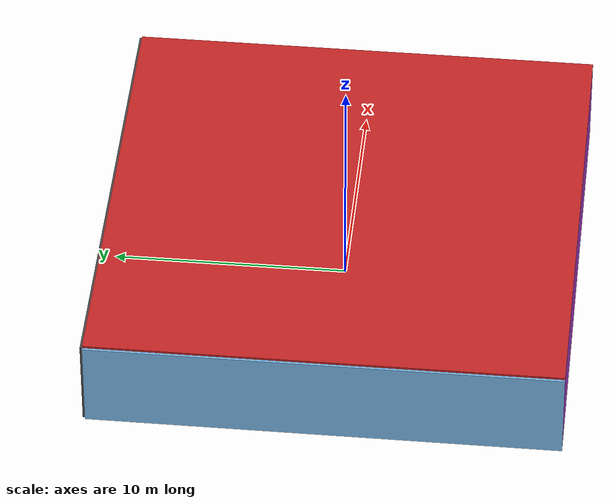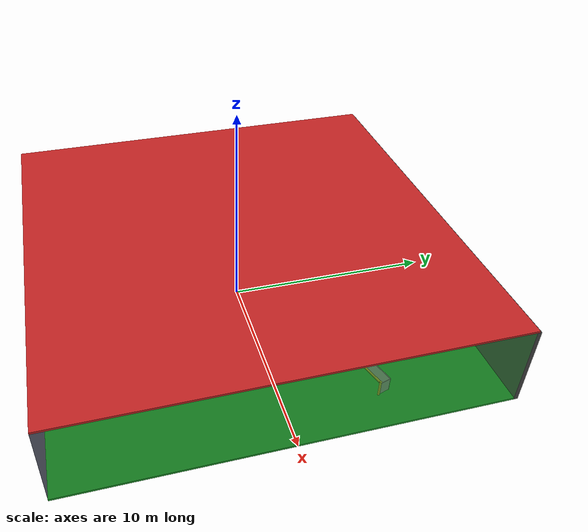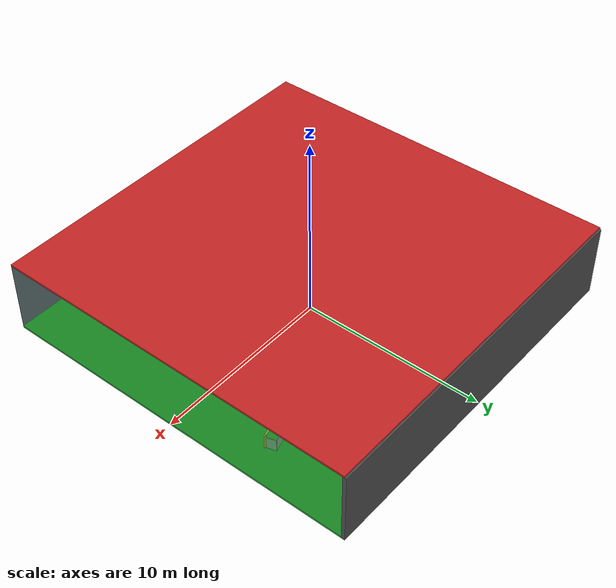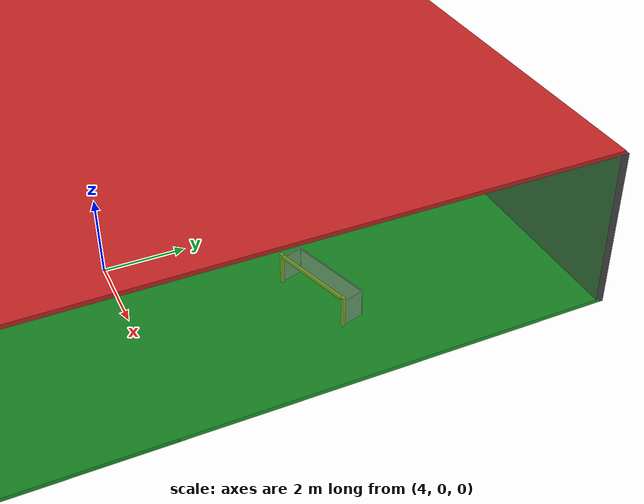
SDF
<sdf version="1.4">
 <world name="default">
  <physics type="ode">
   <max_step_size>0.001</max_step_size>
   <real_time_factor>1</real_time_factor>
   <real_time_update_rate>1000</real_time_update_rate>
   <gravity>0 0 -9.8</gravity>
  </physics>
  <scene><ambient>0.4 0.4 0.4 1</ambient><background>0.7 0.7 0.7 1</background><shadows>1</shadows></scene>
  <model name="Surrounding">
   <static>1</static>
   <link name="Ceiling">
    <collision name="Ceiling_Collision"><geometry><box><size>20 20 0.1</size></box></geometry></collision>
    <visual name="Ceiling_Visual">
     <geometry><box><size>20 20 0.1</size></box></geometry>
     <material>
      <script><uri>file://media/materials/scripts/gazebo.material</uri><name>Gazebo/RedBright</name></script>
     </material>
    </visual>
    <pose>0 0 4.05 0 0 0</pose>
   </link>
   <link name="Wall_South">
    <collision name="Wall_South_Collision">
     <geometry><box><size>20 0 4</size></box></geometry>
     <pose>0 0 2 0 -0 0</pose>
    </collision>
    <visual name="Wall_South_Visual">
     <pose>0 0 2 0 -0 0</pose>
     <geometry><box><size>20 0 4</size></box></geometry>
     <material>
      <script><uri>file://media/materials/scripts/gazebo.material</uri><name>Gazebo/Purple</name></script>
     </material>
    </visual>
    <velocity_decay><linear>0</linear><angular>0</angular></velocity_decay>
    <pose>0 -10 0 0 -0 0</pose>
   </link>
   <link name="Wall_East">
    <collision name="Wall_21_Collision">
     <geometry><box><size>20 0 4</size></box></geometry>
     <pose>0 0 2 0 -0 0</pose>
    </collision>
    <visual name="Wall_21_Visual">
     <pose>0 0 2 0 -0 0</pose>
     <geometry><box><size>20 0 4</size></box></geometry>
     <material>
      <script><uri>file://media/materials/scripts/gazebo.material</uri><name>Gazebo/GreenTransparent</name></script>
     </material>
    </visual>
    <velocity_decay><linear>0</linear><angular>0</angular></velocity_decay>
    <pose>10 0 0 0 -0 1.5708</pose>
   </link>
   <link name="Wall_North">
    <collision name="Wall_22_Collision">
     <geometry><box><size>20 0.2 4</size></box></geometry>
     <pose>0 0 2 0 -0 0</pose>
    </collision>
    <visual name="Wall_22_Visual">
     <pose>0 0 2 0 -0 0</pose>
     <geometry><box><size>20 0.2 4</size></box></geometry>
     <material>
      <script><uri>file://media/materials/scripts/gazebo.material</uri><name>Gazebo/DarkGrey</name></script>
     </material>
    </visual>
    <velocity_decay><linear>0</linear><angular>0</angular></velocity_decay>
    <pose>0 10 0 0 -0 0</pose>
   </link>
   <link name="Wall_West">
    <collision name="Wall_23_Collision">
     <geometry><box><size>20 0.2 4</size></box></geometry>
     <pose>0 0 2 0 -0 0</pose>
    </collision>
    <visual name="Wall_23_Visual">
     <pose>0 0 2 0 -0 0</pose>
     <geometry><box><size>20 0.2 4</size></box></geometry>
     <material>
      <script><uri>file://media/materials/scripts/gazebo.material</uri><name>Gazebo/SkyBlue</name></script>
     </material>
    </visual>
    <velocity_decay><linear>0</linear><angular>0</angular></velocity_decay>
    <pose>-10 0 0 0 0 -1.5708</pose>
   </link>
   <link name="Ground_link">
    <collision name="collision">
     <pose>0 0 .05 0 -0 0</pose>
     <geometry><box><size>20 20 0.1</size></box></geometry>
    </collision>
    <visual name="visual">
     <pose>0 0 .05 0 -0 0</pose>
     <geometry><box><size>20 20 0.1</size></box></geometry>
     <material>
      <script><uri>file://media/materials/scripts/gazebo.material</uri><name>Gazebo/Green</name></script>
     </material>
    </visual>
   </link>
   <static>1</static>
  </model>
  <spherical_coordinates>
   <surface_model>EARTH_WGS84</surface_model>
   <latitude_deg>0</latitude_deg>
   <longitude_deg>0</longitude_deg>
   <elevation>0</elevation>
   <heading_deg>0</heading_deg>
  </spherical_coordinates>
  <light name="lightball_0" type="diffuse">
   <diffuse>0.8 0.8 0.8 1</diffuse>
   <specular>0.2 0.2 0.2 1</specular>
   <attenuation>
    <range>100</range>
    <constant>0.7</constant>
    <linear>0.01</linear>
    <quadratic>0.001</quadratic>
   </attenuation>
   <direction>-0.5 0.1 -0.9</direction>
   <pose>0.836275279409 -4.07308570589 0.951679769862 0 0 0</pose>
  </light>
  <light name="lightball_1" type="diffuse">
   <diffuse>0.8 0.8 0.8 1</diffuse>
   <specular>0.2 0.2 0.2 1</specular>
   <attenuation>
    <range>100</range>
    <constant>0.7</constant>
    <linear>0.01</linear>
    <quadratic>0.001</quadratic>
   </attenuation>
   <direction>-0.5 0.1 -0.9</direction>
   <pose>2.39665541748 -0.563246592277 2.75711852335 0 0 0</pose>
  </light>
  <light name="lightball_2" type="diffuse">
   <diffuse>0.8 0.8 0.8 1</diffuse>
   <specular>0.2 0.2 0.2 1</specular>
   <attenuation>
    <range>100</range>
    <constant>0.7</constant>
    <linear>0.01</linear>
    <quadratic>0.001</quadratic>
   </attenuation>
   <direction>-0.5 0.1 -0.9</direction>
   <pose>-7.5356306626 -2.89311202194 2.70441194529 0 0 0</pose>
  </light>
  <light name="lightball_3" type="diffuse">
   <diffuse>0.8 0.8 0.8 1</diffuse>
   <specular>0.2 0.2 0.2 1</specular>
   <attenuation>
    <range>100</range>
    <constant>0.7</constant>
    <linear>0.01</linear>
    <quadratic>0.001</quadratic>
   </attenuation>
   <direction>-0.5 0.1 -0.9</direction>
   <pose>9.51766666599 -1.34011462753 3.33342647978 0 0 0</pose>
  </light>
  <light name="lightball_4" type="diffuse">
   <diffuse>0.8 0.8 0.8 1</diffuse>
   <specular>0.2 0.2 0.2 1</specular>
   <attenuation>
    <range>100</range>
    <constant>0.7</constant>
    <linear>0.01</linear>
    <quadratic>0.001</quadratic>
   </attenuation>
   <direction>-0.5 0.1 -0.9</direction>
   <pose>-3.6858586709 6.55178699622 2.01065714608 0 0 0</pose>
  </light>
  <light name="lightball_5" type="diffuse">
   <diffuse>0.8 0.8 0.8 1</diffuse>
   <specular>0.2 0.2 0.2 1</specular>
   <attenuation>
    <range>100</range>
    <constant>0.7</constant>
    <linear>0.01</linear>
    <quadratic>0.001</quadratic>
   </attenuation>
   <direction>-0.5 0.1 -0.9</direction>
   <pose>-3.31822223138 -0.114017819446 2.76626050044 0 0 0</pose>
  </light>
  <light name="lightball_6" type="diffuse">
   <diffuse>0.8 0.8 0.8 1</diffuse>
   <specular>0.2 0.2 0.2 1</specular>
   <attenuation>
    <range>100</range>
    <constant>0.7</constant>
    <linear>0.01</linear>
    <quadratic>0.001</quadratic>
   </attenuation>
   <direction>-0.5 0.1 -0.9</direction>
   <pose>-8.55353716121 -8.58899049214 3.3067459953 0 0 0</pose>
  </light>
  <light name="lightball_7" type="diffuse">
   <diffuse>0.8 0.8 0.8 1</diffuse>
   <specular>0.2 0.2 0.2 1</specular>
   <attenuation>
    <range>100</range>
    <constant>0.7</constant>
    <linear>0.01</linear>
    <quadratic>0.001</quadratic>
   </attenuation>
   <direction>-0.5 0.1 -0.9</direction>
   <pose>-3.95168452766 6.02081776897 1.70334920529 0 0 0</pose>
  </light>
  <light name="lightball_8" type="diffuse">
   <diffuse>0.8 0.8 0.8 1</diffuse>
   <specular>0.2 0.2 0.2 1</specular>
   <attenuation>
    <range>100</range>
    <constant>0.7</constant>
    <linear>0.01</linear>
    <quadratic>0.001</quadratic>
   </attenuation>
   <direction>-0.5 0.1 -0.9</direction>
   <pose>8.24709689332 4.06989057294 3.24767773785 0 0 0</pose>
  </light>
  <light name="lightball_9" type="diffuse">
   <diffuse>0.8 0.8 0.8 1</diffuse>
   <specular>0.2 0.2 0.2 1</specular>
   <attenuation>
    <range>100</range>
    <constant>0.7</constant>
    <linear>0.01</linear>
    <quadratic>0.001</quadratic>
   </attenuation>
   <direction>-0.5 0.1 -0.9</direction>
   <pose>-8.07074303714 8.50350957174 1.50121306446 0 0 0</pose>
  </light>
  <light name="lightball_10" type="diffuse">
   <diffuse>0.8 0.8 0.8 1</diffuse>
   <specular>0.2 0.2 0.2 1</specular>
   <attenuation>
    <range>100</range>
    <constant>0.7</constant>
    <linear>0.01</linear>
    <quadratic>0.001</quadratic>
   </attenuation>
   <direction>-0.5 0.1 -0.9</direction>
   <pose>-6.65013515112 7.56990065612 3.29247433946 0 0 0</pose>
  </light>
  <light name="lightball_11" type="diffuse">
   <diffuse>0.8 0.8 0.8 1</diffuse>
   <specular>0.2 0.2 0.2 1</specular>
   <attenuation>
    <range>100</range>
    <constant>0.7</constant>
    <linear>0.01</linear>
    <quadratic>0.001</quadratic>
   </attenuation>
   <direction>-0.5 0.1 -0.9</direction>
   <pose>-9.96615634536 -0.751432967634 0.767892822132 0 0 0</pose>
  </light>
  <include>
   <uri>model://construction_cone</uri>
   <pose>-6.83825981819 -4.97769288372 0 0 0 1.808381054</pose>
  </include>
  <include>
   <uri>model://textured_shapes</uri>
   <pose>-2.3481796656 -0.366307562609 0 0 0 2.22948293228</pose>
  </include>
  <include>
   <uri>model://textured_shapes</uri>
   <pose>1.31152251343 -4.2831942921 0 0 0 2.86806703258</pose>
  </include>
  <include>
   <uri>model://robocup_3Dsim_goal</uri>
   <pose>7.32060804701 3.95713246601 0 0 0 1.8610177368</pose>
  </include>
 </world>
</sdf>

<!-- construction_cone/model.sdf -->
<sdf version="1.5">
  <model name="Construction Cone">
    <link name="link">
      <collision name="collision">
        <geometry>
          <mesh>
            <scale>10 10 10</scale>
            <uri>file://isr-testbed/construction_cone/meshes/construction_cone.dae</uri>
          </mesh>
        </geometry>
      </collision>
      <visual name="visual">
        <geometry>
          <mesh>
            <scale>10 10 10</scale>
            <uri>file://isr-testbed/construction_cone/meshes/construction_cone.dae</uri>
          </mesh>
        </geometry>
      </visual>
    </link>
  </model>
</sdf>

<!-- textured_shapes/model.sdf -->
<sdf version="1.6">
  <model name="textured_shapes">
    <pose>0 0 0.5 0 0 0</pose>
    <link name="box">
      <pose>0 -1.5 0 0 0 0</pose>
      <collision name="collision">
        <geometry>
          <box>
            <size>1 1 1</size>
          </box>
        </geometry>
      </collision>
      <visual name="visual">
        <geometry>
          <box>
            <size>1 1 1</size>
          </box>
        </geometry>
        <material>
          <script>
            <uri>model://../model_source/models/textured_shapes/materials/scripts</uri>
            <uri>model://../model_source/models/textured_shapes/materials/textures</uri>
            <name>TexturedShape/Squares</name>
          </script>
        </material>
      </visual>
    </link>
    <link name="sphere">
      <collision name="collision">
        <geometry>
          <sphere>
            <radius>0.5</radius>
          </sphere>
        </geometry>
      </collision>
      <visual name="visual">
        <geometry>
          <sphere>
            <radius>0.5</radius>
          </sphere>
        </geometry>
        <material>
          <script>
            <uri>model://../model_source/models/textured_shapes/materials/scripts</uri>
            <uri>model://../model_source/models/textured_shapes/materials/textures</uri>
            <name>TexturedShape/Squares</name>
          </script>
        </material>
      </visual>
    </link>
    <link name="cylinder">
      <pose>0 1.5 0 0 0 0</pose>
      <collision name="collision">
        <geometry>
          <cylinder>
            <radius>0.5</radius>
            <length>1</length>
          </cylinder>
        </geometry>
      </collision>
      <visual name="visual">
        <geometry>
          <cylinder>
            <radius>0.5</radius>
            <length>1</length>
          </cylinder>
        </geometry>
        <material>
          <script>
            <uri>model://../model_source/models/textured_shapes/materials/scripts</uri>
            <uri>model://../model_source/models/textured_shapes/materials/textures</uri>
            <name>TexturedShape/Squares</name>
          </script>
        </material>
      </visual>
    </link>
  </model>
</sdf>

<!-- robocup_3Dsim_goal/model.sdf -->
<sdf version="1.5">
  <model name="robocup_3d_goal">
    <static>true</static>
    <link name="left_post">
      <pose>0 1.05 0.45 0 0 0</pose>
      <collision name="collision">
        <geometry>
          <cylinder>
            <radius>0.05</radius>
            <length>0.9</length>
          </cylinder>
        </geometry>
      </collision>
      <visual name="visual">
        <geometry>
          <cylinder>
            <radius>0.05</radius>
            <length>0.9</length>
          </cylinder>
        </geometry>
        <material>
          <script>
            <uri>file://media/materials/scripts/gazebo.material</uri>
            <name>Gazebo/ZincYellow</name>
          </script>
        </material>
      </visual>
    </link>
    <link name="left_support_horiz_lower">
      <pose>0.30 1.05 0.01 0 0 0</pose>
      <collision name="collision">
        <geometry>
          <box>
            <size>0.50 0.02 0.02</size>
          </box>
        </geometry>
      </collision>
      <visual name="visual">
        <geometry>
          <box>
            <size>0.50 0.02 0.02</size>
          </box>
        </geometry>
        <material>
          <script>
            <uri>file://media/materials/scripts/gazebo.material</uri>
            <name>Gazebo/White</name>
          </script>
        </material>
      </visual>
    </link>
    <link name="left_support_horiz_upper">
      <pose>0.30 1.05 0.79 0 0 0</pose>
      <collision name="collision">
        <geometry>
          <box>
            <size>0.50 0.02 0.02</size>
          </box>
        </geometry>
      </collision>
      <visual name="visual">
        <geometry>
          <box>
            <size>0.50 0.02 0.02</size>
          </box>
        </geometry>
        <material>
          <script>
            <uri>file://media/materials/scripts/gazebo.material</uri>
            <name>Gazebo/White</name>
          </script>
        </material>
      </visual>
    </link>
    <link name="left_support_vertical">
      <pose>0.56 1.05 0.4 0 1.5708 0</pose>
      <collision name="collision">
        <geometry>
          <box>
            <size>0.80 0.02 0.02</size>
          </box>
        </geometry>
      </collision>
      <visual name="visual">
        <geometry>
          <box>
            <size>0.80 0.02 0.02</size>
          </box>
        </geometry>
        <material>
          <script>
            <uri>file://media/materials/scripts/gazebo.material</uri>
            <name>Gazebo/White</name>
          </script>
        </material>
      </visual>
    </link>
    <link name="right_support_horiz_lower">
      <pose>0.30 -1.05 0.01 0 0 0</pose>
      <collision name="collision">
        <geometry>
          <box>
            <size>0.50 0.02 0.02</size>
          </box>
        </geometry>
      </collision>
      <visual name="visual">
        <geometry>
          <box>
            <size>0.50 0.02 0.02</size>
          </box>
        </geometry>
        <material>
          <script>
            <uri>file://media/materials/scripts/gazebo.material</uri>
            <name>Gazebo/White</name>
          </script>
        </material>
      </visual>
    </link>
    <link name="right_support_horiz_upper">
      <pose>0.30 -1.05 0.79 0 0 0</pose>
      <collision name="collision">
        <geometry>
          <box>
            <size>0.50 0.02 0.02</size>
          </box>
        </geometry>
      </collision>
      <visual name="visual">
        <geometry>
          <box>
            <size>0.50 0.02 0.02</size>
          </box>
        </geometry>
        <material>
          <script>
            <uri>file://media/materials/scripts/gazebo.material</uri>
            <name>Gazebo/White</name>
          </script>
        </material>
      </visual>
    </link>
    <link name="right_support_vertical">
      <pose>0.56 -1.05 0.4 0 1.5708 0</pose>
      <collision name="collision">
        <geometry>
          <box>
            <size>0.80 0.02 0.02</size>
          </box>
        </geometry>
      </collision>
      <visual name="visual">
        <geometry>
          <box>
            <size>0.80 0.02 0.02</size>
          </box>
        </geometry>
        <material>
          <script>
            <uri>file://media/materials/scripts/gazebo.material</uri>
            <name>Gazebo/White</name>
          </script>
        </material>
      </visual>
    </link>
    <link name="center_support_horiz_lower">
      <pose>0.56 0 0.01 0 1.5708 0</pose>
      <collision name="collision">
        <geometry>
          <box>
            <size>0.02 2.08 0.02</size>
          </box>
        </geometry>
      </collision>
      <visual name="visual">
        <geometry>
          <box>
            <size>0.02 2.08 0.02</size>
          </box>
        </geometry>
        <material>
          <script>
            <uri>file://media/materials/scripts/gazebo.material</uri>
            <name>Gazebo/White</name>
          </script>
        </material>
      </visual>
    </link>
    <link name="center_support_horiz_upper">
      <pose>0.56 0 0.79 0 1.5708 0</pose>
      <collision name="collision">
        <geometry>
          <box>
            <size>0.02 2.08 0.02</size>
          </box>
        </geometry>
      </collision>
      <visual name="visual">
        <geometry>
          <box>
            <size>0.02 2.08 0.02</size>
          </box>
        </geometry>
        <material>
          <script>
            <uri>file://media/materials/scripts/gazebo.material</uri>
            <name>Gazebo/White</name>
          </script>
        </material>
      </visual>
    </link>
    <link name="right_post">
      <pose>0 -1.05 0.45 0 0 0</pose>
      <collision name="collision">
        <geometry>
          <cylinder>
            <radius>0.05</radius>
            <length>0.9</length>
          </cylinder>
        </geometry>
      </collision>
      <visual name="visual">
        <geometry>
          <cylinder>
            <radius>0.05</radius>
            <length>0.9</length>
          </cylinder>
        </geometry>
        <material>
          <script>
            <uri>file://media/materials/scripts/gazebo.material</uri>
            <name>Gazebo/ZincYellow</name>
          </script>
        </material>
      </visual>
    </link>
    <link name="crossbar">
      <pose>0 0 0.85 1.57 1.57 0</pose>
      <collision name="collision">
        <geometry>
          <cylinder>
            <radius>0.05</radius>
            <length>2.0</length>
          </cylinder>
        </geometry>
      </collision>
      <visual name="visual">
        <geometry>
          <cylinder>
            <radius>0.05</radius>
            <length>2.0</length>
          </cylinder>
        </geometry>
        <material>
          <script>
            <uri>file://media/materials/scripts/gazebo.material</uri>
            <name>Gazebo/ZincYellow</name>
          </script>
        </material>
      </visual>
    </link>
    <link name="center_net">
      <pose>0.56 0 0.40 0 0 0</pose>
      <collision name="collision">
        <geometry>
          <box>
            <size>0.01 2.1 0.80</size>
          </box>
        </geometry>
      </collision>
      <visual name="visual">
        <geometry>
          <box>
            <size>0.01 2.1 0.80</size>
          </box>
        </geometry>
        <material>
          <script>
            <uri>model://../model_source/models/robocup09_spl_field/materials/scripts/</uri>
            <uri>model://../model_source/models/robocup09_spl_field/materials/textures/</uri>
            <name>RoboCup/Net</name>
          </script>
        </material>
      </visual>
    </link>
    <link name="left_net">
      <pose>0.30 1.05 0.40 0 0 0</pose>
      <collision name="collision">
        <geometry>
          <box>
            <size>0.50 0.01 0.76</size>
          </box>
        </geometry>
      </collision>
      <visual name="visual">
        <geometry>
          <box>
            <size>0.50 0.01 0.76</size>
          </box>
        </geometry>
        <material>
          <script>
            <uri>model://../model_source/models/robocup09_spl_field/materials/scripts/</uri>
            <uri>model://../model_source/models/robocup09_spl_field/materials/textures/</uri>
            <name>RoboCup/Net</name>
          </script>
        </material>
      </visual>
    </link>
    <link name="right_net">
      <pose>0.30 -1.05 0.40 0 0 0</pose>
      <collision name="collision">
        <geometry>
          <box>
            <size>0.50 0.01 0.76</size>
          </box>
        </geometry>
      </collision>
      <visual name="visual">
        <geometry>
          <box>
            <size>0.50 0.01 0.76</size>
          </box>
        </geometry>
        <material>
          <script>
            <uri>model://../model_source/models/robocup09_spl_field/materials/scripts/</uri>
            <uri>model://../model_source/models/robocup09_spl_field/materials/textures/</uri>
            <name>RoboCup/Net</name>
          </script>
        </material>
      </visual>
    </link>
  </model>
</sdf>
